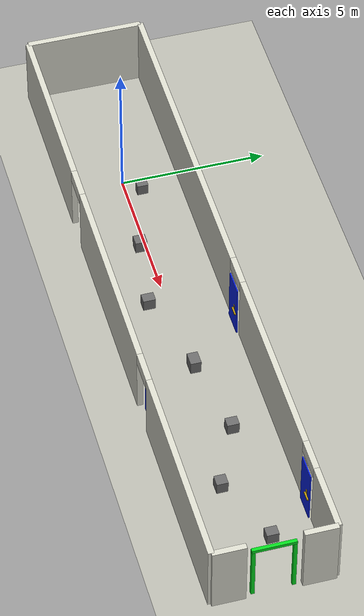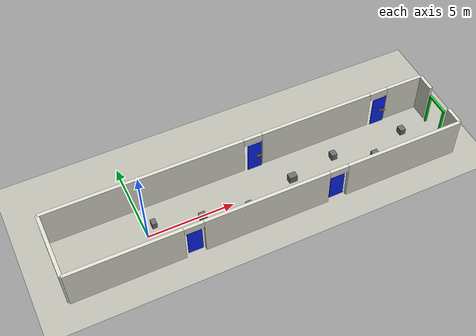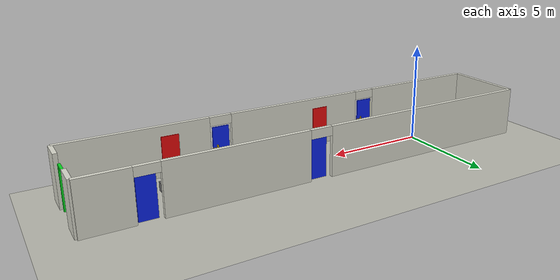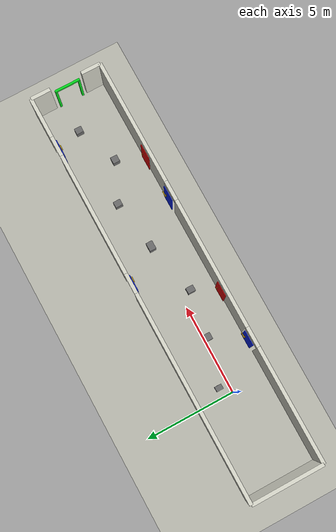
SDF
<?xml version='1.0' encoding='utf-8'?>
<sdf version="1.6">
  <world name="fire_corridor">
    <physics name="default_physics" type="ode">
      <max_step_size>0.001</max_step_size>
      <real_time_update_rate>1000</real_time_update_rate>
    </physics>
    <plugin name="gz::sim::systems::Physics" filename="gz-sim-physics-system" />
    <plugin name="gz::sim::systems::UserCommands" filename="gz-sim-user-commands-system" />
    <plugin name="gz::sim::systems::SceneBroadcaster" filename="gz-sim-scene-broadcaster-system" />
    <plugin name="gz::sim::systems::Sensors" filename="gz-sim-sensors-system"><render_engine>ogre2</render_engine></plugin>
    <light type="directional" name="sun">
      <cast_shadows>true</cast_shadows>
      <pose>6 0 10 0 0 0</pose>
      <diffuse>0.9 0.9 0.9 1</diffuse>
      <specular>0.3 0.3 0.3 1</specular>
      <direction>-0.5 0.1 -1</direction>
    </light>
    <light type="point" name="light_mid">
      <pose>8 0 2.8 0 0 0</pose>
      <diffuse>0.8 0.8 0.8 1</diffuse>
      <specular>0.1 0.1 0.1 1</specular>
      <attenuation><range>16</range><linear>0.05</linear></attenuation>
    </light>

    <model name="ground_plane">
      <static>true</static>
      <link name="link">
        <collision name="col"><geometry><plane><normal>0 0 1</normal><size>30 10</size></plane></geometry></collision>
        <visual name="vis"><geometry><plane><normal>0 0 1</normal><size>30 10</size></plane></geometry>
          <material><ambient>0.72 0.72 0.68 1</ambient><diffuse>0.72 0.72 0.68 1</diffuse></material>
        </visual>
      </link>
    </model>

    <model name="wall_south">
  <static>true</static>
  <pose>6.50 -2.00 1.25 0 0 0</pose>
  <link name="link">
    <collision name="collision_wall_0">
      <geometry>
        <box>
          <size>6.388571 0.200000 2.500000</size>
        </box>
      </geometry>
      <pose>-8.305714 0 0.000000 0 0 0</pose>
    </collision>
    <visual name="visual_wall_0">
      <geometry>
        <box>
          <size>6.388571 0.200000 2.500000</size>
        </box>
      </geometry>
      <material>
        <ambient>0.85 0.85 0.80 1</ambient>
        <diffuse>0.85 0.85 0.80 1</diffuse>
      </material>
      <pose>-8.305714 0 0.000000 0 0 0</pose>
    </visual>
    <collision name="collision_lintel_0">
      <geometry>
        <box>
          <size>1.116429 0.200000 0.450000</size>
        </box>
      </geometry>
      <pose>-4.553214 0 1.025000 0 0 0</pose>
    </collision>
    <visual name="visual_lintel_0">
      <geometry>
        <box>
          <size>1.116429 0.200000 0.450000</size>
        </box>
      </geometry>
      <material>
        <ambient>0.85 0.85 0.80 1</ambient>
        <diffuse>0.85 0.85 0.80 1</diffuse>
      </material>
      <pose>-4.553214 0 1.025000 0 0 0</pose>
    </visual>
    <collision name="collision_wall_1">
      <geometry>
        <box>
          <size>7.283571 0.200000 2.500000</size>
        </box>
      </geometry>
      <pose>-0.353214 0 0.000000 0 0 0</pose>
    </collision>
    <visual name="visual_wall_1">
      <geometry>
        <box>
          <size>7.283571 0.200000 2.500000</size>
        </box>
      </geometry>
      <material>
        <ambient>0.85 0.85 0.80 1</ambient>
        <diffuse>0.85 0.85 0.80 1</diffuse>
      </material>
      <pose>-0.353214 0 0.000000 0 0 0</pose>
    </visual>
    <collision name="collision_lintel_1">
      <geometry>
        <box>
          <size>1.116429 0.200000 0.450000</size>
        </box>
      </geometry>
      <pose>3.846786 0 1.025000 0 0 0</pose>
    </collision>
    <visual name="visual_lintel_1">
      <geometry>
        <box>
          <size>1.116429 0.200000 0.450000</size>
        </box>
      </geometry>
      <material>
        <ambient>0.85 0.85 0.80 1</ambient>
        <diffuse>0.85 0.85 0.80 1</diffuse>
      </material>
      <pose>3.846786 0 1.025000 0 0 0</pose>
    </visual>
    <collision name="collision_wall_end">
      <geometry>
        <box>
          <size>7.095000 0.200000 2.500000</size>
        </box>
      </geometry>
      <pose>7.952500 0 0.000000 0 0 0</pose>
    </collision>
    <visual name="visual_wall_end">
      <geometry>
        <box>
          <size>7.095000 0.200000 2.500000</size>
        </box>
      </geometry>
      <material>
        <ambient>0.85 0.85 0.80 1</ambient>
        <diffuse>0.85 0.85 0.80 1</diffuse>
      </material>
      <pose>7.952500 0 0.000000 0 0 0</pose>
    </visual>
  </link>
</model>
    <model name="wall_north">
  <static>true</static>
  <pose>6.50 2.00 1.25 0 0 0</pose>
  <link name="link">
    <collision name="collision_wall_0">
      <geometry>
        <box>
          <size>11.588571 0.200000 2.500000</size>
        </box>
      </geometry>
      <pose>-5.705714 0 0.000000 0 0 0</pose>
    </collision>
    <visual name="visual_wall_0">
      <geometry>
        <box>
          <size>11.588571 0.200000 2.500000</size>
        </box>
      </geometry>
      <material>
        <ambient>0.85 0.85 0.80 1</ambient>
        <diffuse>0.85 0.85 0.80 1</diffuse>
      </material>
      <pose>-5.705714 0 0.000000 0 0 0</pose>
    </visual>
    <collision name="collision_lintel_0">
      <geometry>
        <box>
          <size>1.116429 0.200000 0.450000</size>
        </box>
      </geometry>
      <pose>0.646786 0 1.025000 0 0 0</pose>
    </collision>
    <visual name="visual_lintel_0">
      <geometry>
        <box>
          <size>1.116429 0.200000 0.450000</size>
        </box>
      </geometry>
      <material>
        <ambient>0.85 0.85 0.80 1</ambient>
        <diffuse>0.85 0.85 0.80 1</diffuse>
      </material>
      <pose>0.646786 0 1.025000 0 0 0</pose>
    </visual>
    <collision name="collision_wall_1">
      <geometry>
        <box>
          <size>6.883571 0.200000 2.500000</size>
        </box>
      </geometry>
      <pose>4.646786 0 0.000000 0 0 0</pose>
    </collision>
    <visual name="visual_wall_1">
      <geometry>
        <box>
          <size>6.883571 0.200000 2.500000</size>
        </box>
      </geometry>
      <material>
        <ambient>0.85 0.85 0.80 1</ambient>
        <diffuse>0.85 0.85 0.80 1</diffuse>
      </material>
      <pose>4.646786 0 0.000000 0 0 0</pose>
    </visual>
    <collision name="collision_lintel_1">
      <geometry>
        <box>
          <size>1.116429 0.200000 0.450000</size>
        </box>
      </geometry>
      <pose>8.646786 0 1.025000 0 0 0</pose>
    </collision>
    <visual name="visual_lintel_1">
      <geometry>
        <box>
          <size>1.116429 0.200000 0.450000</size>
        </box>
      </geometry>
      <material>
        <ambient>0.85 0.85 0.80 1</ambient>
        <diffuse>0.85 0.85 0.80 1</diffuse>
      </material>
      <pose>8.646786 0 1.025000 0 0 0</pose>
    </visual>
    <collision name="collision_wall_end">
      <geometry>
        <box>
          <size>2.295000 0.200000 2.500000</size>
        </box>
      </geometry>
      <pose>10.352500 0 0.000000 0 0 0</pose>
    </collision>
    <visual name="visual_wall_end">
      <geometry>
        <box>
          <size>2.295000 0.200000 2.500000</size>
        </box>
      </geometry>
      <material>
        <ambient>0.85 0.85 0.80 1</ambient>
        <diffuse>0.85 0.85 0.80 1</diffuse>
      </material>
      <pose>10.352500 0 0.000000 0 0 0</pose>
    </visual>
  </link>
</model>
    <model name="wall_west">
      <static>true</static>
      <pose>-5.00 0.00 1.25 0 0 0</pose>
      <link name="link">
        <collision name="col"><geometry><box><size>0.200 4.000 2.500</size></box></geometry></collision>
        <visual name="vis">
          <geometry><box><size>0.200 4.000 2.500</size></box></geometry>
          <material><ambient>0.85 0.85 0.80 1</ambient><diffuse>0.85 0.85 0.80 1</diffuse></material>
        </visual>
      </link>
    </model>
    <model name="wall_east_upper">
      <static>true</static>
      <pose>18.00 1.45 1.25 0 0 0</pose>
      <link name="link">
        <collision name="col"><geometry><box><size>0.200 1.100 2.500</size></box></geometry></collision>
        <visual name="vis">
          <geometry><box><size>0.200 1.100 2.500</size></box></geometry>
          <material><ambient>0.85 0.85 0.80 1</ambient><diffuse>0.85 0.85 0.80 1</diffuse></material>
        </visual>
      </link>
    </model>
    <model name="wall_east_lower">
      <static>true</static>
      <pose>18.00 -1.45 1.25 0 0 0</pose>
      <link name="link">
        <collision name="col"><geometry><box><size>0.200 1.100 2.500</size></box></geometry></collision>
        <visual name="vis">
          <geometry><box><size>0.200 1.100 2.500</size></box></geometry>
          <material><ambient>0.85 0.85 0.80 1</ambient><diffuse>0.85 0.85 0.80 1</diffuse></material>
        </visual>
      </link>
    </model>
    <model name="door_red1">
      <static>true</static>
      <pose>4.80 -1.86 1.0 0 0 0</pose>
      <link name="link">
        <visual name="panel">
          <geometry><box><size>0.85 0.045 2.0</size></box></geometry>
          <material><ambient>0.92 0.04 0.04 1</ambient><diffuse>0.92 0.04 0.04 1</diffuse></material>
        </visual>
      </link>
    </model>
    <model name="handle_red1">
      <static>true</static>
      <pose>5.04 -1.82 0.95 1.5708 0 0</pose>
      <link name="link">
        <visual name="handle"><geometry><cylinder><radius>0.018</radius><length>0.13</length></cylinder></geometry><material><ambient>0.75 0.60 0.05 1</ambient><diffuse>0.75 0.60 0.05 1</diffuse></material></visual>
      </link>
    </model>
    <model name="door_red2">
      <static>true</static>
      <pose>12.90 -1.86 1.0 0 0 0</pose>
      <link name="link">
        <visual name="panel">
          <geometry><box><size>0.85 0.045 2.0</size></box></geometry>
          <material><ambient>0.92 0.04 0.04 1</ambient><diffuse>0.92 0.04 0.04 1</diffuse></material>
        </visual>
      </link>
    </model>
    <model name="handle_red2">
      <static>true</static>
      <pose>13.14 -1.82 0.95 1.5708 0 0</pose>
      <link name="link">
        <visual name="handle"><geometry><cylinder><radius>0.018</radius><length>0.13</length></cylinder></geometry><material><ambient>0.75 0.60 0.05 1</ambient><diffuse>0.75 0.60 0.05 1</diffuse></material></visual>
      </link>
    </model>
    <model name="door_blue1">
      <static>false</static>
      <pose>2 -1.86 1 0 0 0</pose>
      <link name="panel">
        <inertial>
          <mass>2.0</mass>
          <inertia>
            <ixx>0.90</ixx><ixy>0</ixy><ixz>0</ixz>
            <iyy>0.90</iyy><iyz>0</iyz><izz>0.12</izz>
          </inertia>
        </inertial>
        <collision name="panel_collision">
          <geometry><box><size>0.85 0.045 2</size></box></geometry>
          <surface>
            <friction><ode><mu>0.8</mu><mu2>0.8</mu2></ode></friction>
          </surface>
        </collision>
        <visual name="panel">
          <geometry><box><size>0.85 0.045 2</size></box></geometry>
          <material><ambient>0.04 0.14 0.92 1</ambient><diffuse>0.04 0.14 0.92 1</diffuse></material>
        </visual>
        <collision name="handle_collision">
<pose>0.3 0.074 -0.05 0 0 0</pose>
<geometry><box><size>0.32 0.07 0.055</size></box></geometry>
        </collision>
        <visual name="handle_backplate">
<pose>0.18 0.032 -0.05 0 0 0</pose>
<geometry><box><size>0.08 0.022 0.28</size></box></geometry>
<material><ambient>0.75 0.60 0.05 1</ambient><diffuse>0.75 0.60 0.05 1</diffuse></material>
        </visual>
        <visual name="handle">
<pose>0.3 0.078 -0.05 0 0 0</pose>
<geometry><box><size>0.32 0.052 0.052</size></box></geometry>
<material><ambient>0.75 0.60 0.05 1</ambient><diffuse>0.75 0.60 0.05 1</diffuse></material>
        </visual>
      </link>
      <joint name="hinge" type="revolute">
        <pose>-0.425 0 0 0 0 0</pose>
        <parent>world</parent>
        <child>panel</child>
        <axis>
          <xyz>0 0 1</xyz>
          <limit><lower>-2.10</lower><upper>2.10</upper><effort>40</effort><velocity>1.5</velocity></limit>
          <dynamics><damping>1.0</damping><friction>0.05</friction></dynamics>
        </axis>
      </joint>
      <plugin filename="ignition-gazebo-joint-position-controller-system" name="gz::sim::systems::JointPositionController">
        <joint_name>hinge</joint_name>
        <topic>/fire_robot/door/blue/x200/yn186/sp/cmd</topic>
        <p_gain>8.0</p_gain>
        <d_gain>0.4</d_gain>
        <cmd_max>60</cmd_max>
        <cmd_min>-60</cmd_min>
      </plugin>
    </model>
    <model name="door_blue2">
      <static>false</static>
      <pose>7.2 1.86 1 0 0 0</pose>
      <link name="panel">
        <inertial>
          <mass>2.0</mass>
          <inertia>
            <ixx>0.90</ixx><ixy>0</ixy><ixz>0</ixz>
            <iyy>0.90</iyy><iyz>0</iyz><izz>0.12</izz>
          </inertia>
        </inertial>
        <collision name="panel_collision">
          <geometry><box><size>0.85 0.045 2</size></box></geometry>
          <surface>
            <friction><ode><mu>0.8</mu><mu2>0.8</mu2></ode></friction>
          </surface>
        </collision>
        <visual name="panel">
          <geometry><box><size>0.85 0.045 2</size></box></geometry>
          <material><ambient>0.04 0.14 0.92 1</ambient><diffuse>0.04 0.14 0.92 1</diffuse></material>
        </visual>
        <collision name="handle_collision">
<pose>0.3 -0.074 -0.05 0 0 0</pose>
<geometry><box><size>0.32 0.07 0.055</size></box></geometry>
        </collision>
        <visual name="handle_backplate">
<pose>0.18 -0.032 -0.05 0 0 0</pose>
<geometry><box><size>0.08 0.022 0.28</size></box></geometry>
<material><ambient>0.75 0.60 0.05 1</ambient><diffuse>0.75 0.60 0.05 1</diffuse></material>
        </visual>
        <visual name="handle">
<pose>0.3 -0.078 -0.05 0 0 0</pose>
<geometry><box><size>0.32 0.052 0.052</size></box></geometry>
<material><ambient>0.75 0.60 0.05 1</ambient><diffuse>0.75 0.60 0.05 1</diffuse></material>
        </visual>
      </link>
      <joint name="hinge" type="revolute">
        <pose>-0.425 0 0 0 0 0</pose>
        <parent>world</parent>
        <child>panel</child>
        <axis>
          <xyz>0 0 1</xyz>
          <limit><lower>-2.10</lower><upper>2.10</upper><effort>40</effort><velocity>1.5</velocity></limit>
          <dynamics><damping>1.0</damping><friction>0.05</friction></dynamics>
        </axis>
      </joint>
      <plugin filename="ignition-gazebo-joint-position-controller-system" name="gz::sim::systems::JointPositionController">
        <joint_name>hinge</joint_name>
        <topic>/fire_robot/door/blue/x720/yp186/sn/cmd</topic>
        <p_gain>8.0</p_gain>
        <d_gain>0.4</d_gain>
        <cmd_max>60</cmd_max>
        <cmd_min>-60</cmd_min>
      </plugin>
    </model>
    <model name="door_blue3">
      <static>false</static>
      <pose>10.4 -1.86 1 0 0 0</pose>
      <link name="panel">
        <inertial>
          <mass>2.0</mass>
          <inertia>
            <ixx>0.90</ixx><ixy>0</ixy><ixz>0</ixz>
            <iyy>0.90</iyy><iyz>0</iyz><izz>0.12</izz>
          </inertia>
        </inertial>
        <collision name="panel_collision">
          <geometry><box><size>0.85 0.045 2</size></box></geometry>
          <surface>
            <friction><ode><mu>0.8</mu><mu2>0.8</mu2></ode></friction>
          </surface>
        </collision>
        <visual name="panel">
          <geometry><box><size>0.85 0.045 2</size></box></geometry>
          <material><ambient>0.04 0.14 0.92 1</ambient><diffuse>0.04 0.14 0.92 1</diffuse></material>
        </visual>
        <collision name="handle_collision">
<pose>0.3 0.074 -0.05 0 0 0</pose>
<geometry><box><size>0.32 0.07 0.055</size></box></geometry>
        </collision>
        <visual name="handle_backplate">
<pose>0.18 0.032 -0.05 0 0 0</pose>
<geometry><box><size>0.08 0.022 0.28</size></box></geometry>
<material><ambient>0.75 0.60 0.05 1</ambient><diffuse>0.75 0.60 0.05 1</diffuse></material>
        </visual>
        <visual name="handle">
<pose>0.3 0.078 -0.05 0 0 0</pose>
<geometry><box><size>0.32 0.052 0.052</size></box></geometry>
<material><ambient>0.75 0.60 0.05 1</ambient><diffuse>0.75 0.60 0.05 1</diffuse></material>
        </visual>
      </link>
      <joint name="hinge" type="revolute">
        <pose>-0.425 0 0 0 0 0</pose>
        <parent>world</parent>
        <child>panel</child>
        <axis>
          <xyz>0 0 1</xyz>
          <limit><lower>-2.10</lower><upper>2.10</upper><effort>40</effort><velocity>1.5</velocity></limit>
          <dynamics><damping>1.0</damping><friction>0.05</friction></dynamics>
        </axis>
      </joint>
      <plugin filename="ignition-gazebo-joint-position-controller-system" name="gz::sim::systems::JointPositionController">
        <joint_name>hinge</joint_name>
        <topic>/fire_robot/door/blue/x1040/yn186/sp/cmd</topic>
        <p_gain>8.0</p_gain>
        <d_gain>0.4</d_gain>
        <cmd_max>60</cmd_max>
        <cmd_min>-60</cmd_min>
      </plugin>
    </model>
    <model name="door_blue4">
      <static>false</static>
      <pose>15.2 1.86 1 0 0 0</pose>
      <link name="panel">
        <inertial>
          <mass>2.0</mass>
          <inertia>
            <ixx>0.90</ixx><ixy>0</ixy><ixz>0</ixz>
            <iyy>0.90</iyy><iyz>0</iyz><izz>0.12</izz>
          </inertia>
        </inertial>
        <collision name="panel_collision">
          <geometry><box><size>0.85 0.045 2</size></box></geometry>
          <surface>
            <friction><ode><mu>0.8</mu><mu2>0.8</mu2></ode></friction>
          </surface>
        </collision>
        <visual name="panel">
          <geometry><box><size>0.85 0.045 2</size></box></geometry>
          <material><ambient>0.04 0.14 0.92 1</ambient><diffuse>0.04 0.14 0.92 1</diffuse></material>
        </visual>
        <collision name="handle_collision">
<pose>0.3 -0.074 -0.05 0 0 0</pose>
<geometry><box><size>0.32 0.07 0.055</size></box></geometry>
        </collision>
        <visual name="handle_backplate">
<pose>0.18 -0.032 -0.05 0 0 0</pose>
<geometry><box><size>0.08 0.022 0.28</size></box></geometry>
<material><ambient>0.75 0.60 0.05 1</ambient><diffuse>0.75 0.60 0.05 1</diffuse></material>
        </visual>
        <visual name="handle">
<pose>0.3 -0.078 -0.05 0 0 0</pose>
<geometry><box><size>0.32 0.052 0.052</size></box></geometry>
<material><ambient>0.75 0.60 0.05 1</ambient><diffuse>0.75 0.60 0.05 1</diffuse></material>
        </visual>
      </link>
      <joint name="hinge" type="revolute">
        <pose>-0.425 0 0 0 0 0</pose>
        <parent>world</parent>
        <child>panel</child>
        <axis>
          <xyz>0 0 1</xyz>
          <limit><lower>-2.10</lower><upper>2.10</upper><effort>40</effort><velocity>1.5</velocity></limit>
          <dynamics><damping>1.0</damping><friction>0.05</friction></dynamics>
        </axis>
      </joint>
      <plugin filename="ignition-gazebo-joint-position-controller-system" name="gz::sim::systems::JointPositionController">
        <joint_name>hinge</joint_name>
        <topic>/fire_robot/door/blue/x1520/yp186/sn/cmd</topic>
        <p_gain>8.0</p_gain>
        <d_gain>0.4</d_gain>
        <cmd_max>60</cmd_max>
        <cmd_min>-60</cmd_min>
      </plugin>
    </model>
    <model name="exit_green">
      <static>true</static>
      <pose>17.92 0 1.0 0 0 0</pose>
      <link name="link">
        <visual name="jamb_left"><pose>0.0 0.66 0.0 0.0 0.0 0.0</pose><geometry><box><size>0.12 0.12 2.0</size></box></geometry><material><ambient>0.02 0.85 0.12 1</ambient><diffuse>0.02 0.85 0.12 1</diffuse></material></visual><collision name="jamb_left"><pose>0.0 0.66 0.0 0.0 0.0 0.0</pose><geometry><box><size>0.12 0.12 2.0</size></box></geometry></collision><visual name="jamb_right"><pose>0.0 -0.66 0.0 0.0 0.0 0.0</pose><geometry><box><size>0.12 0.12 2.0</size></box></geometry><material><ambient>0.02 0.85 0.12 1</ambient><diffuse>0.02 0.85 0.12 1</diffuse></material></visual><collision name="jamb_right"><pose>0.0 -0.66 0.0 0.0 0.0 0.0</pose><geometry><box><size>0.12 0.12 2.0</size></box></geometry></collision><visual name="lintel"><pose>0.0 0.0 1.06 0.0 0.0 0.0</pose><geometry><box><size>0.12 1.44 0.12</size></box></geometry><material><ambient>0.02 0.85 0.12 1</ambient><diffuse>0.02 0.85 0.12 1</diffuse></material></visual><collision name="lintel"><pose>0.0 0.0 1.06 0.0 0.0 0.0</pose><geometry><box><size>0.12 1.44 0.12</size></box></geometry></collision></link>
    </model>
    <model name="world3_obs_01">
      <static>true</static>
      <pose>0.55 0.55 0.20 0 0 0</pose>
      <link name="link">
        <collision name="col"><geometry><box><size>0.280 0.380 0.400</size></box></geometry></collision>
        <visual name="vis">
          <geometry><box><size>0.280 0.380 0.400</size></box></geometry>
          <material><ambient>0.42 0.42 0.42 1</ambient><diffuse>0.42 0.42 0.42 1</diffuse></material>
        </visual>
      </link>
    </model>
    <model name="world3_obs_02">
      <static>true</static>
      <pose>3.10 -0.20 0.22 0 0 0</pose>
      <link name="link">
        <collision name="col"><geometry><box><size>0.380 0.400 0.440</size></box></geometry></collision>
        <visual name="vis">
          <geometry><box><size>0.380 0.400 0.440</size></box></geometry>
          <material><ambient>0.42 0.42 0.42 1</ambient><diffuse>0.42 0.42 0.42 1</diffuse></material>
        </visual>
      </link>
    </model>
    <model name="world3_obs_03">
      <static>true</static>
      <pose>5.70 -0.62 0.21 0 0 0</pose>
      <link name="link">
        <collision name="col"><geometry><box><size>0.340 0.420 0.420</size></box></geometry></collision>
        <visual name="vis">
          <geometry><box><size>0.340 0.420 0.420</size></box></geometry>
          <material><ambient>0.42 0.42 0.42 1</ambient><diffuse>0.42 0.42 0.42 1</diffuse></material>
        </visual>
      </link>
    </model>
    <model name="world3_obs_04">
      <static>true</static>
      <pose>8.70 0.10 0.23 0 0 0</pose>
      <link name="link">
        <collision name="col"><geometry><box><size>0.480 0.360 0.460</size></box></geometry></collision>
        <visual name="vis">
          <geometry><box><size>0.480 0.360 0.460</size></box></geometry>
          <material><ambient>0.42 0.42 0.42 1</ambient><diffuse>0.42 0.42 0.42 1</diffuse></material>
        </visual>
      </link>
    </model>
    <model name="world3_obs_05">
      <static>true</static>
      <pose>11.55 0.55 0.21 0 0 0</pose>
      <link name="link">
        <collision name="col"><geometry><box><size>0.340 0.400 0.420</size></box></geometry></collision>
        <visual name="vis">
          <geometry><box><size>0.340 0.400 0.420</size></box></geometry>
          <material><ambient>0.42 0.42 0.42 1</ambient><diffuse>0.42 0.42 0.42 1</diffuse></material>
        </visual>
      </link>
    </model>
    <model name="world3_obs_06">
      <static>true</static>
      <pose>13.75 -0.45 0.21 0 0 0</pose>
      <link name="link">
        <collision name="col"><geometry><box><size>0.380 0.380 0.420</size></box></geometry></collision>
        <visual name="vis">
          <geometry><box><size>0.380 0.380 0.420</size></box></geometry>
          <material><ambient>0.42 0.42 0.42 1</ambient><diffuse>0.42 0.42 0.42 1</diffuse></material>
        </visual>
      </link>
    </model>
    <model name="world3_obs_07">
      <static>true</static>
      <pose>16.10 0.50 0.20 0 0 0</pose>
      <link name="link">
        <collision name="col"><geometry><box><size>0.340 0.400 0.400</size></box></geometry></collision>
        <visual name="vis">
          <geometry><box><size>0.340 0.400 0.400</size></box></geometry>
          <material><ambient>0.42 0.42 0.42 1</ambient><diffuse>0.42 0.42 0.42 1</diffuse></material>
        </visual>
      </link>
    </model>
  </world>
</sdf>
